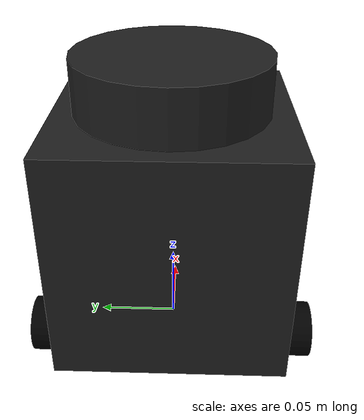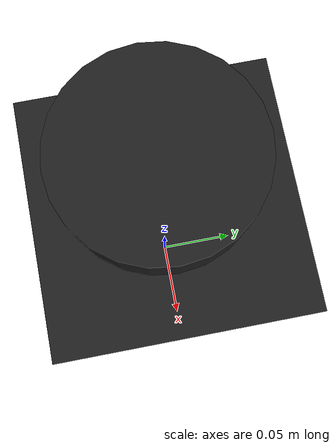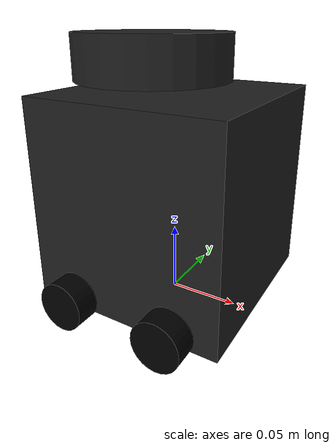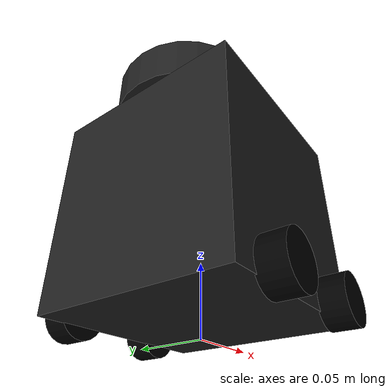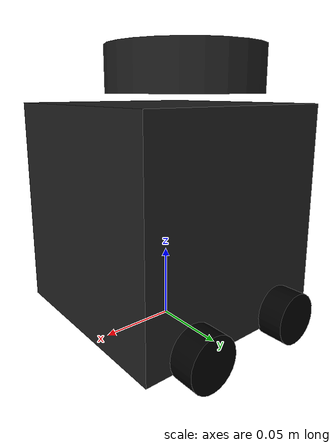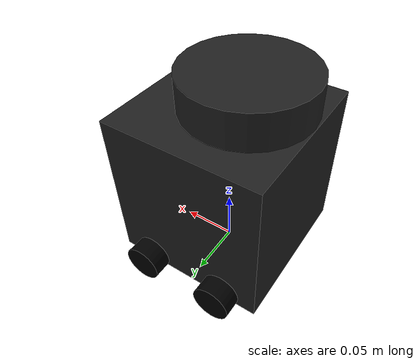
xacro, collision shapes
<?xml version="1.0" ?>
<robot name="omniturtle" xmlns:xacro="http://ros.org/wiki/xacro">
  <xacro:include filename="$(find omniturtle_description)/urdf/common_properties.xacro"/>
  <xacro:include filename="$(find omniturtle_description)/urdf/omniturtle.gazebo.xacro"/>

  <!-- Properties block -->
  <xacro:property name="PI" value="3.1415926535897931"/>

  <xacro:property name="b_diam" value="0.13755" />    <!-- base diameter -->
  <xacro:property name="b_height" value="0.14413" />  <!-- base height -->

  <xacro:property name="w_mass" value="0.1" />      <!-- wheel mass -->
  <xacro:property name="w_diam" value="0.034" />    <!-- wheel diameter -->
  <xacro:property name="w_width" value="0.018" />   <!-- wheel width -->

  <!-- Links & Joints block -->
  <link name="base_footprint"/>

  <joint name="base_joint" type="fixed">
    <parent link="base_footprint"/>
    <child link="base_link"/>
    <origin xyz="0.0 0.0 0.010" rpy="0 0 0"/>
  </joint>

  <link name="base_link">
    <visual>
      <origin xyz="0.0 0 0.0" rpy="0 0 0"/>
      <geometry>
        <mesh filename="package://omniturtle_description/meshes/bases/burger_base_clear.stl" scale="0.001 0.001 0.001"/>
      </geometry>
      <material name="light_black"/>
    </visual>

    <collision>
      <origin xyz="0.0 0.0 ${b_height/2}" rpy="0 0 0"/>
      <geometry>
        <box size="0.140 0.140 0.143"/>
      </geometry>
    </collision>

    <inertial>
      <origin xyz="0 0 0" rpy="0 0 0"/>
      <mass value="0.82573504"/>
      <inertia ixx="1.0" ixy="0.0" ixz="0.0"
               iyy="1.0" iyz="0.0"
               izz="1.0" />
    </inertial>
  </link>

  <!-- Wheel macro -->
  <xacro:macro name="wheel" params="suffix right front">

    <!-- Wheel link -->
    <link name="wheel_${suffix}">
      <visual>
        <origin xyz="0 0 0" rpy="0 0 0" />
	<geometry>
	  <cylinder radius="${w_diam/2}" length="${w_width}"/>
	</geometry>
        <material name="black">
          <color rgba="0 0 0 1"/>
        </material>
      </visual>

      <collision>
        <origin xyz="0 0 0" rpy="0 0 0"/>
	<geometry>
	  <cylinder radius="${w_diam/2}" length="${w_width}"/>
	</geometry>
      </collision>

      <inertial>
        <origin xyz="0 0 0" rpy="0 0 0"/>
        <mass value="${w_mass}"/>
        <inertia
	    ixx="0.001" ixy="0.0" ixz="0.0"
	    iyy="0.001" iyz="0.0"
	    izz="0.001"/>
      </inertial>
    </link>

    <joint name="wheel_${suffix}_joint" type="continuous">
      <axis xyz="0 0 1"/>
      <parent link="base_link"/>
      <child link="wheel_${suffix}"/>
      <origin xyz="${(0.02 + w_diam/2) * front} ${(b_diam + w_width)/2 * -right} ${w_width/2}" rpy="${-pi/2} 0 0"/>
      <limit effort="100" velocity="100" />
      <joint_properties damping="0.0" friction="0.0" />
    </joint>

  </xacro:macro>

  <!-- Add wheels to Base -->
  <xacro:wheel suffix="rf" right="1"   front="1"/>
  <xacro:wheel suffix="lf" right="-1"   front="1"/>
  <xacro:wheel suffix="rb" right="1"   front="-1"/>
  <xacro:wheel suffix="lb" right="-1"   front="-1"/>

   <!-- Transmission macro -->
  <xacro:macro name="transmiss" params="suffix">
    <!-- Wheel transmission -->
    <transmission name="wheel_${suffix}_trans">
      <type>transmission_interface/SimpleTransmission</type>
      <joint name="wheel_${suffix}_joint">
        <hardwareInterface>hardware_interface/EffortJointInterface</hardwareInterface>
      </joint>
      <actuator name="wheel_${suffix}_motor">
        <hardwareInterface>hardware_interface/EffortJointInterface</hardwareInterface>
        <mechanicalReduction>1</mechanicalReduction>
      </actuator>
    </transmission>

  </xacro:macro>

  <!-- Add transmissions -->
  <xacro:transmiss suffix="rf"/>
  <xacro:transmiss suffix="lf"/>
  <xacro:transmiss suffix="rb"/>
  <xacro:transmiss suffix="lb"/>

  <!-- Sensors block -->
  <joint name="imu_joint" type="fixed">
    <parent link="base_link"/>
    <child link="imu_link"/>
    <origin xyz="-0.032 0 0.068" rpy="0 0 0"/>
  </joint>

  <link name="imu_link"/>

  <joint name="scan_joint" type="fixed">
    <parent link="base_link"/>
    <child link="base_scan"/>
    <origin xyz="-0.032 0 0.172" rpy="0 0 0"/>
  </joint>

  <link name="base_scan">
    <visual>
      <origin xyz="0 0 0.0" rpy="0 0 0"/>
      <geometry>
        <mesh filename="package://turtlebot3_description/meshes/sensors/lds.stl" scale="0.001 0.001 0.001"/>
      </geometry>
      <material name="dark"/>
    </visual>

    <collision>
      <origin xyz="0.015 0 -0.0065" rpy="0 0 0"/>
      <geometry>
        <cylinder length="0.0315" radius="0.055"/>
      </geometry>
    </collision>

    <inertial>
      <mass value="0.114" />
      <origin xyz="0 0 0" />
      <inertia ixx="0.001" ixy="0.0" ixz="0.0"
               iyy="0.001" iyz="0.0"
               izz="0.001" />
    </inertial>
  </link>

</robot>
